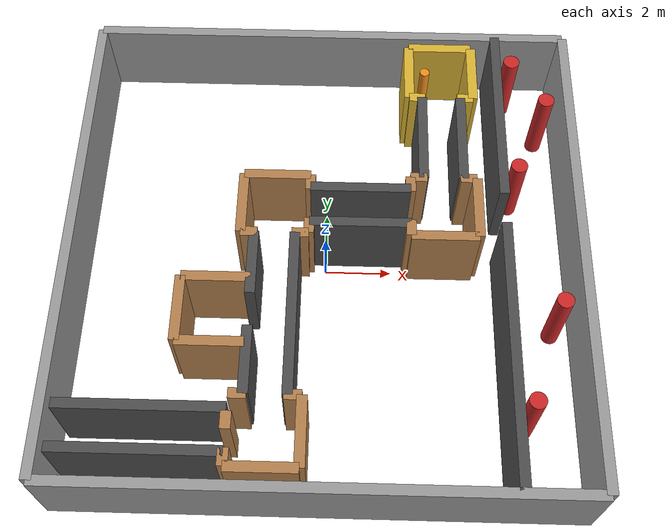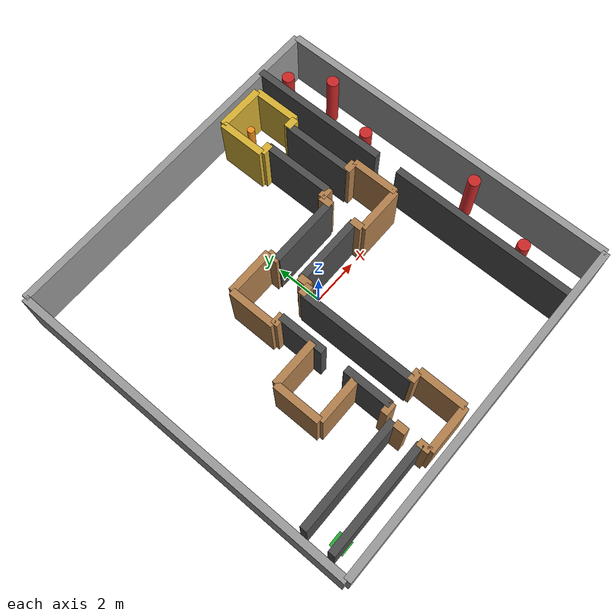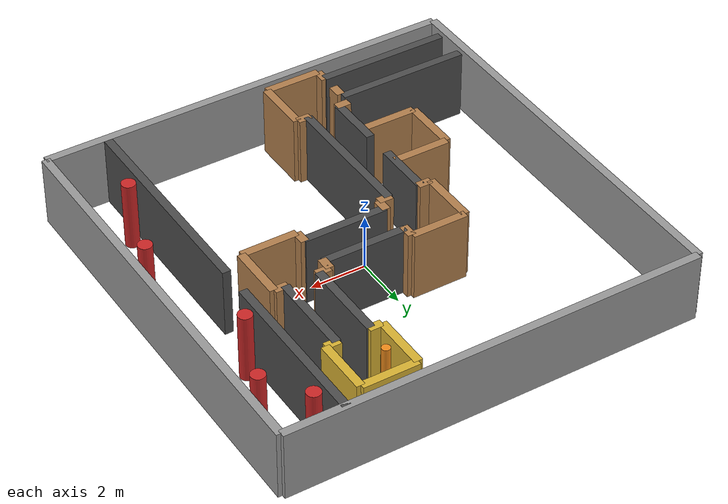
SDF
<?xml version="1.0" ?>
<sdf version="1.6">
  <world name="nidar_airmouse_arena">

    <physics type="ode">
      <max_step_size>0.004</max_step_size>
      <real_time_update_rate>250</real_time_update_rate>
    </physics>

    <model name="nidar_maze">
      <static>true</static>

      <!-- ============ OUTER BOUNDARY WALLS (15m x 15m) ============ -->
      <link name="wall_north">
        <pose>0 7.5 1.25 0 0 0</pose>
        <collision name="col_north"><geometry><box><size>15 0.3 2.5</size></box></geometry></collision>
        <visual name="vis_north"><geometry><box><size>15 0.3 2.5</size></box></geometry>
          <material><script><uri>file://media/materials/scripts/gazebo.material</uri><name>Gazebo/Grey</name></script></material>
        </visual>
      </link>

      <link name="wall_south">
        <pose>0 -7.5 1.25 0 0 0</pose>
        <collision name="col_south"><geometry><box><size>15 0.3 2.5</size></box></geometry></collision>
        <visual name="vis_south"><geometry><box><size>15 0.3 2.5</size></box></geometry>
          <material><script><uri>file://media/materials/scripts/gazebo.material</uri><name>Gazebo/Grey</name></script></material>
        </visual>
      </link>

      <link name="wall_east">
        <pose>7.5 0 1.25 0 0 0</pose>
        <collision name="col_east"><geometry><box><size>0.3 15 2.5</size></box></geometry></collision>
        <visual name="vis_east"><geometry><box><size>0.3 15 2.5</size></box></geometry>
          <material><script><uri>file://media/materials/scripts/gazebo.material</uri><name>Gazebo/Grey</name></script></material>
        </visual>
      </link>

      <link name="wall_west">
        <pose>-7.5 0 1.25 0 0 0</pose>
        <collision name="col_west"><geometry><box><size>0.3 15 2.5</size></box></geometry></collision>
        <visual name="vis_west"><geometry><box><size>0.3 15 2.5</size></box></geometry>
          <material><script><uri>file://media/materials/scripts/gazebo.material</uri><name>Gazebo/Grey</name></script></material>
        </visual>
      </link>

      <!-- ============ LAUNCH PAD (2ft x 2ft = 0.61m x 0.61m) ============ -->
      <link name="launch_pad">
        <pose>-6.5 -6.5 0.01 0 0 0</pose>
        <collision name="col_pad"><geometry><box><size>0.61 0.61 0.02</size></box></geometry></collision>
        <visual name="vis_pad"><geometry><box><size>0.61 0.61 0.02</size></box></geometry>
          <material><script><uri>file://media/materials/scripts/gazebo.material</uri><name>Gazebo/Green</name></script></material>
        </visual>
      </link>

      <!-- ============ CORRIDOR 1: Launch pad -> Room 1 (horizontal, y=-6) ============ -->
      <link name="corr1_wall_south">
        <pose>-4.85 -6.6 1.25 0 0 0</pose>
        <collision name="c1s_col"><geometry><box><size>4.7 0.3 2.5</size></box></geometry></collision>
        <visual name="c1s_vis"><geometry><box><size>4.7 0.3 2.5</size></box></geometry>
          <material><script><uri>file://media/materials/scripts/gazebo.material</uri><name>Gazebo/DarkGrey</name></script></material>
        </visual>
      </link>
      <link name="corr1_wall_north">
        <pose>-4.85 -5.4 1.25 0 0 0</pose>
        <collision name="c1n_col"><geometry><box><size>4.7 0.3 2.5</size></box></geometry></collision>
        <visual name="c1n_vis"><geometry><box><size>4.7 0.3 2.5</size></box></geometry>
          <material><script><uri>file://media/materials/scripts/gazebo.material</uri><name>Gazebo/DarkGrey</name></script></material>
        </visual>
      </link>

      <!-- ============ ROOM 1: center (-1.5,-6), 2x2 ============ -->
      <!-- West wall with door (to corridor 1), gap y[-6.5,-5.5] -->
      <link name="r1_west_a">
        <pose>-2.5 -6.75 1.25 0 0 0</pose>
        <collision name="r1wa_col"><geometry><box><size>0.3 0.5 2.5</size></box></geometry></collision>
        <visual name="r1wa_vis"><geometry><box><size>0.3 0.5 2.5</size></box></geometry>
          <material><script><uri>file://media/materials/scripts/gazebo.material</uri><name>Gazebo/Wood</name></script></material>
        </visual>
      </link>
      <link name="r1_west_b">
        <pose>-2.5 -5.75 1.25 0 0 0</pose>
        <collision name="r1wb_col"><geometry><box><size>0.3 0.5 2.5</size></box></geometry></collision>
        <visual name="r1wb_vis"><geometry><box><size>0.3 0.5 2.5</size></box></geometry>
          <material><script><uri>file://media/materials/scripts/gazebo.material</uri><name>Gazebo/Wood</name></script></material>
        </visual>
      </link>
      <link name="r1_east">
        <pose>-0.5 -6 1.25 0 0 0</pose>
        <collision name="r1e_col"><geometry><box><size>0.3 2 2.5</size></box></geometry></collision>
        <visual name="r1e_vis"><geometry><box><size>0.3 2 2.5</size></box></geometry>
          <material><script><uri>file://media/materials/scripts/gazebo.material</uri><name>Gazebo/Wood</name></script></material>
        </visual>
      </link>
      <link name="r1_south">
        <pose>-1.5 -7 1.25 0 0 0</pose>
        <collision name="r1s_col"><geometry><box><size>2 0.3 2.5</size></box></geometry></collision>
        <visual name="r1s_vis"><geometry><box><size>2 0.3 2.5</size></box></geometry>
          <material><script><uri>file://media/materials/scripts/gazebo.material</uri><name>Gazebo/Wood</name></script></material>
        </visual>
      </link>
      <!-- North wall with door (to corridor 2), gap x[-2,-1] -->
      <link name="r1_north_a">
        <pose>-2.25 -5 1.25 0 0 0</pose>
        <collision name="r1na_col"><geometry><box><size>0.5 0.3 2.5</size></box></geometry></collision>
        <visual name="r1na_vis"><geometry><box><size>0.5 0.3 2.5</size></box></geometry>
          <material><script><uri>file://media/materials/scripts/gazebo.material</uri><name>Gazebo/Wood</name></script></material>
        </visual>
      </link>
      <link name="r1_north_b">
        <pose>-0.75 -5 1.25 0 0 0</pose>
        <collision name="r1nb_col"><geometry><box><size>0.5 0.3 2.5</size></box></geometry></collision>
        <visual name="r1nb_vis"><geometry><box><size>0.5 0.3 2.5</size></box></geometry>
          <material><script><uri>file://media/materials/scripts/gazebo.material</uri><name>Gazebo/Wood</name></script></material>
        </visual>
      </link>

      <!-- ============ CORRIDOR 2: Room 1 -> Room 2 (vertical, x=-1.5) ============ -->
      <!-- West wall split for Room 5 branch door, gap y[-3,-2] -->
      <link name="corr2_wall_west_a">
        <pose>-2.1 -4 1.25 0 0 0</pose>
        <collision name="c2wa_col"><geometry><box><size>0.3 2 2.5</size></box></geometry></collision>
        <visual name="c2wa_vis"><geometry><box><size>0.3 2 2.5</size></box></geometry>
          <material><script><uri>file://media/materials/scripts/gazebo.material</uri><name>Gazebo/DarkGrey</name></script></material>
        </visual>
      </link>
      <link name="corr2_wall_west_b">
        <pose>-2.1 -1 1.25 0 0 0</pose>
        <collision name="c2wb_col"><geometry><box><size>0.3 2 2.5</size></box></geometry></collision>
        <visual name="c2wb_vis"><geometry><box><size>0.3 2 2.5</size></box></geometry>
          <material><script><uri>file://media/materials/scripts/gazebo.material</uri><name>Gazebo/DarkGrey</name></script></material>
        </visual>
      </link>
      <link name="corr2_wall_east">
        <pose>-0.9 -2.5 1.25 0 0 0</pose>
        <collision name="c2e_col"><geometry><box><size>0.3 5 2.5</size></box></geometry></collision>
        <visual name="c2e_vis"><geometry><box><size>0.3 5 2.5</size></box></geometry>
          <material><script><uri>file://media/materials/scripts/gazebo.material</uri><name>Gazebo/DarkGrey</name></script></material>
        </visual>
      </link>

      <!-- ============ ROOM 5: dead-end trap room, branch off corridor 2 ============ -->
      <!-- East side of room 5 reuses corridor2_wall_west_a/b as its wall; only the 1m gap is the door -->
      <link name="r5_west">
        <pose>-4.1 -2.5 1.25 0 0 0</pose>
        <collision name="r5w_col"><geometry><box><size>0.3 2 2.5</size></box></geometry></collision>
        <visual name="r5w_vis"><geometry><box><size>0.3 2 2.5</size></box></geometry>
          <material><script><uri>file://media/materials/scripts/gazebo.material</uri><name>Gazebo/Wood</name></script></material>
        </visual>
      </link>
      <link name="r5_north">
        <pose>-3.1 -1.5 1.25 0 0 0</pose>
        <collision name="r5n_col"><geometry><box><size>2 0.3 2.5</size></box></geometry></collision>
        <visual name="r5n_vis"><geometry><box><size>2 0.3 2.5</size></box></geometry>
          <material><script><uri>file://media/materials/scripts/gazebo.material</uri><name>Gazebo/Wood</name></script></material>
        </visual>
      </link>
      <link name="r5_south">
        <pose>-3.1 -3.5 1.25 0 0 0</pose>
        <collision name="r5s_col"><geometry><box><size>2 0.3 2.5</size></box></geometry></collision>
        <visual name="r5s_vis"><geometry><box><size>2 0.3 2.5</size></box></geometry>
          <material><script><uri>file://media/materials/scripts/gazebo.material</uri><name>Gazebo/Wood</name></script></material>
        </visual>
      </link>

      <!-- ============ ROOM 2: center (-1.5,1), 2x2 ============ -->
      <!-- South wall with door (to corridor 2), gap x[-2,-1] -->
      <link name="r2_south_a">
        <pose>-2.25 0 1.25 0 0 0</pose>
        <collision name="r2sa_col"><geometry><box><size>0.5 0.3 2.5</size></box></geometry></collision>
        <visual name="r2sa_vis"><geometry><box><size>0.5 0.3 2.5</size></box></geometry>
          <material><script><uri>file://media/materials/scripts/gazebo.material</uri><name>Gazebo/Wood</name></script></material>
        </visual>
      </link>
      <link name="r2_south_b">
        <pose>-0.75 0 1.25 0 0 0</pose>
        <collision name="r2sb_col"><geometry><box><size>0.5 0.3 2.5</size></box></geometry></collision>
        <visual name="r2sb_vis"><geometry><box><size>0.5 0.3 2.5</size></box></geometry>
          <material><script><uri>file://media/materials/scripts/gazebo.material</uri><name>Gazebo/Wood</name></script></material>
        </visual>
      </link>
      <link name="r2_north">
        <pose>-1.5 2 1.25 0 0 0</pose>
        <collision name="r2n_col"><geometry><box><size>2 0.3 2.5</size></box></geometry></collision>
        <visual name="r2n_vis"><geometry><box><size>2 0.3 2.5</size></box></geometry>
          <material><script><uri>file://media/materials/scripts/gazebo.material</uri><name>Gazebo/Wood</name></script></material>
        </visual>
      </link>
      <link name="r2_west">
        <pose>-2.5 1 1.25 0 0 0</pose>
        <collision name="r2w_col"><geometry><box><size>0.3 2 2.5</size></box></geometry></collision>
        <visual name="r2w_vis"><geometry><box><size>0.3 2 2.5</size></box></geometry>
          <material><script><uri>file://media/materials/scripts/gazebo.material</uri><name>Gazebo/Wood</name></script></material>
        </visual>
      </link>
      <!-- East wall with door (to corridor 3), gap y[0.5,1.5] -->
      <link name="r2_east_a">
        <pose>-0.5 0.25 1.25 0 0 0</pose>
        <collision name="r2ea_col"><geometry><box><size>0.3 0.5 2.5</size></box></geometry></collision>
        <visual name="r2ea_vis"><geometry><box><size>0.3 0.5 2.5</size></box></geometry>
          <material><script><uri>file://media/materials/scripts/gazebo.material</uri><name>Gazebo/Wood</name></script></material>
        </visual>
      </link>
      <link name="r2_east_b">
        <pose>-0.5 1.75 1.25 0 0 0</pose>
        <collision name="r2eb_col"><geometry><box><size>0.3 0.5 2.5</size></box></geometry></collision>
        <visual name="r2eb_vis"><geometry><box><size>0.3 0.5 2.5</size></box></geometry>
          <material><script><uri>file://media/materials/scripts/gazebo.material</uri><name>Gazebo/Wood</name></script></material>
        </visual>
      </link>

      <!-- ============ CORRIDOR 3: Room 2 -> Room 3 (horizontal, y=1) ============ -->
      <link name="corr3_wall_south">
        <pose>1 0.4 1.25 0 0 0</pose>
        <collision name="c3s_col"><geometry><box><size>3 0.3 2.5</size></box></geometry></collision>
        <visual name="c3s_vis"><geometry><box><size>3 0.3 2.5</size></box></geometry>
          <material><script><uri>file://media/materials/scripts/gazebo.material</uri><name>Gazebo/DarkGrey</name></script></material>
        </visual>
      </link>
      <link name="corr3_wall_north">
        <pose>1 1.6 1.25 0 0 0</pose>
        <collision name="c3n_col"><geometry><box><size>3 0.3 2.5</size></box></geometry></collision>
        <visual name="c3n_vis"><geometry><box><size>3 0.3 2.5</size></box></geometry>
          <material><script><uri>file://media/materials/scripts/gazebo.material</uri><name>Gazebo/DarkGrey</name></script></material>
        </visual>
      </link>

      <!-- ============ ROOM 3: center (3.5,1), 2x2 ============ -->
      <!-- West wall with door (to corridor 3), gap y[0.5,1.5] -->
      <link name="r3_west_a">
        <pose>2.5 0.25 1.25 0 0 0</pose>
        <collision name="r3wa_col"><geometry><box><size>0.3 0.5 2.5</size></box></geometry></collision>
        <visual name="r3wa_vis"><geometry><box><size>0.3 0.5 2.5</size></box></geometry>
          <material><script><uri>file://media/materials/scripts/gazebo.material</uri><name>Gazebo/Wood</name></script></material>
        </visual>
      </link>
      <link name="r3_west_b">
        <pose>2.5 1.75 1.25 0 0 0</pose>
        <collision name="r3wb_col"><geometry><box><size>0.3 0.5 2.5</size></box></geometry></collision>
        <visual name="r3wb_vis"><geometry><box><size>0.3 0.5 2.5</size></box></geometry>
          <material><script><uri>file://media/materials/scripts/gazebo.material</uri><name>Gazebo/Wood</name></script></material>
        </visual>
      </link>
      <link name="r3_east">
        <pose>4.5 1 1.25 0 0 0</pose>
        <collision name="r3e_col"><geometry><box><size>0.3 2 2.5</size></box></geometry></collision>
        <visual name="r3e_vis"><geometry><box><size>0.3 2 2.5</size></box></geometry>
          <material><script><uri>file://media/materials/scripts/gazebo.material</uri><name>Gazebo/Wood</name></script></material>
        </visual>
      </link>
      <link name="r3_south">
        <pose>3.5 0 1.25 0 0 0</pose>
        <collision name="r3s_col"><geometry><box><size>2 0.3 2.5</size></box></geometry></collision>
        <visual name="r3s_vis"><geometry><box><size>2 0.3 2.5</size></box></geometry>
          <material><script><uri>file://media/materials/scripts/gazebo.material</uri><name>Gazebo/Wood</name></script></material>
        </visual>
      </link>
      <!-- North wall with door (to corridor 4), gap x[3,4] -->
      <link name="r3_north_a">
        <pose>2.75 2 1.25 0 0 0</pose>
        <collision name="r3na_col"><geometry><box><size>0.5 0.3 2.5</size></box></geometry></collision>
        <visual name="r3na_vis"><geometry><box><size>0.5 0.3 2.5</size></box></geometry>
          <material><script><uri>file://media/materials/scripts/gazebo.material</uri><name>Gazebo/Wood</name></script></material>
        </visual>
      </link>
      <link name="r3_north_b">
        <pose>4.25 2 1.25 0 0 0</pose>
        <collision name="r3nb_col"><geometry><box><size>0.5 0.3 2.5</size></box></geometry></collision>
        <visual name="r3nb_vis"><geometry><box><size>0.5 0.3 2.5</size></box></geometry>
          <material><script><uri>file://media/materials/scripts/gazebo.material</uri><name>Gazebo/Wood</name></script></material>
        </visual>
      </link>

      <!-- ============ CORRIDOR 4: Room 3 -> Room 4 (vertical, x=3.5) ============ -->
      <link name="corr4_wall_west">
        <pose>2.9 3.5 1.25 0 0 0</pose>
        <collision name="c4w_col"><geometry><box><size>0.3 3 2.5</size></box></geometry></collision>
        <visual name="c4w_vis"><geometry><box><size>0.3 3 2.5</size></box></geometry>
          <material><script><uri>file://media/materials/scripts/gazebo.material</uri><name>Gazebo/DarkGrey</name></script></material>
        </visual>
      </link>
      <link name="corr4_wall_east">
        <pose>4.1 3.5 1.25 0 0 0</pose>
        <collision name="c4e_col"><geometry><box><size>0.3 3 2.5</size></box></geometry></collision>
        <visual name="c4e_vis"><geometry><box><size>0.3 3 2.5</size></box></geometry>
          <material><script><uri>file://media/materials/scripts/gazebo.material</uri><name>Gazebo/DarkGrey</name></script></material>
        </visual>
      </link>

      <!-- ============ ROOM 4: GOAL ROOM, center (3.5,6), 2x2 ============ -->
      <!-- South wall with door (to corridor 4), gap x[3,4] -->
      <link name="r4_south_a">
        <pose>2.75 5 1.25 0 0 0</pose>
        <collision name="r4sa_col"><geometry><box><size>0.5 0.3 2.5</size></box></geometry></collision>
        <visual name="r4sa_vis"><geometry><box><size>0.5 0.3 2.5</size></box></geometry>
          <material><script><uri>file://media/materials/scripts/gazebo.material</uri><name>Gazebo/Gold</name></script></material>
        </visual>
      </link>
      <link name="r4_south_b">
        <pose>4.25 5 1.25 0 0 0</pose>
        <collision name="r4sb_col"><geometry><box><size>0.5 0.3 2.5</size></box></geometry></collision>
        <visual name="r4sb_vis"><geometry><box><size>0.5 0.3 2.5</size></box></geometry>
          <material><script><uri>file://media/materials/scripts/gazebo.material</uri><name>Gazebo/Gold</name></script></material>
        </visual>
      </link>
      <link name="r4_north">
        <pose>3.5 7 1.25 0 0 0</pose>
        <collision name="r4n_col"><geometry><box><size>2 0.3 2.5</size></box></geometry></collision>
        <visual name="r4n_vis"><geometry><box><size>2 0.3 2.5</size></box></geometry>
          <material><script><uri>file://media/materials/scripts/gazebo.material</uri><name>Gazebo/Gold</name></script></material>
        </visual>
      </link>
      <link name="r4_west">
        <pose>2.5 6 1.25 0 0 0</pose>
        <collision name="r4w_col"><geometry><box><size>0.3 2 2.5</size></box></geometry></collision>
        <visual name="r4w_vis"><geometry><box><size>0.3 2 2.5</size></box></geometry>
          <material><script><uri>file://media/materials/scripts/gazebo.material</uri><name>Gazebo/Gold</name></script></material>
        </visual>
      </link>
      <link name="r4_east">
        <pose>4.5 6 1.25 0 0 0</pose>
        <collision name="r4e_col"><geometry><box><size>0.3 2 2.5</size></box></geometry></collision>
        <visual name="r4e_vis"><geometry><box><size>0.3 2 2.5</size></box></geometry>
          <material><script><uri>file://media/materials/scripts/gazebo.material</uri><name>Gazebo/Gold</name></script></material>
        </visual>
      </link>
      <!-- small pillar obstacle inside the goal room -->
      <link name="r4_pillar">
        <pose>3.0 6 1.25 0 0 0</pose>
        <collision name="r4p_col"><geometry><cylinder><radius>0.15</radius><length>2.5</length></cylinder></geometry></collision>
        <visual name="r4p_vis"><geometry><cylinder><radius>0.15</radius><length>2.5</length></cylinder></geometry>
          <material><script><uri>file://media/materials/scripts/gazebo.material</uri><name>Gazebo/Orange</name></script></material>
        </visual>
      </link>

      <!-- ============ PILLAR GAUNTLET DIVIDER (x=5.3), door gap y[0.5,1.5] ============ -->
      <link name="pg_divider_a">
        <pose>5.3 -3.5 1.25 0 0 0</pose>
        <collision name="pga_col"><geometry><box><size>0.3 8 2.5</size></box></geometry></collision>
        <visual name="pga_vis"><geometry><box><size>0.3 8 2.5</size></box></geometry>
          <material><script><uri>file://media/materials/scripts/gazebo.material</uri><name>Gazebo/DarkGrey</name></script></material>
        </visual>
      </link>
      <link name="pg_divider_b">
        <pose>5.3 4.5 1.25 0 0 0</pose>
        <collision name="pgb_col"><geometry><box><size>0.3 6 2.5</size></box></geometry></collision>
        <visual name="pgb_vis"><geometry><box><size>0.3 6 2.5</size></box></geometry>
          <material><script><uri>file://media/materials/scripts/gazebo.material</uri><name>Gazebo/DarkGrey</name></script></material>
        </visual>
      </link>

      <!-- ============ PILLAR GAUNTLET: staggered slalom obstacles ============ -->
      <link name="pillar_1">
        <pose>5.8 -5 1.25 0 0 0</pose>
        <collision name="p1_col"><geometry><cylinder><radius>0.25</radius><length>2.5</length></cylinder></geometry></collision>
        <visual name="p1_vis"><geometry><cylinder><radius>0.25</radius><length>2.5</length></cylinder></geometry>
          <material><script><uri>file://media/materials/scripts/gazebo.material</uri><name>Gazebo/Red</name></script></material>
        </visual>
      </link>
      <link name="pillar_2">
        <pose>6.8 -2 1.25 0 0 0</pose>
        <collision name="p2_col"><geometry><cylinder><radius>0.25</radius><length>2.5</length></cylinder></geometry></collision>
        <visual name="p2_vis"><geometry><cylinder><radius>0.25</radius><length>2.5</length></cylinder></geometry>
          <material><script><uri>file://media/materials/scripts/gazebo.material</uri><name>Gazebo/Red</name></script></material>
        </visual>
      </link>
      <link name="pillar_3">
        <pose>5.8 2.5 1.25 0 0 0</pose>
        <collision name="p3_col"><geometry><cylinder><radius>0.25</radius><length>2.5</length></cylinder></geometry></collision>
        <visual name="p3_vis"><geometry><cylinder><radius>0.25</radius><length>2.5</length></cylinder></geometry>
          <material><script><uri>file://media/materials/scripts/gazebo.material</uri><name>Gazebo/Red</name></script></material>
        </visual>
      </link>
      <link name="pillar_4">
        <pose>6.8 5 1.25 0 0 0</pose>
        <collision name="p4_col"><geometry><cylinder><radius>0.25</radius><length>2.5</length></cylinder></geometry></collision>
        <visual name="p4_vis"><geometry><cylinder><radius>0.25</radius><length>2.5</length></cylinder></geometry>
          <material><script><uri>file://media/materials/scripts/gazebo.material</uri><name>Gazebo/Red</name></script></material>
        </visual>
      </link>
      <link name="pillar_5">
        <pose>5.8 6.5 1.25 0 0 0</pose>
        <collision name="p5_col"><geometry><cylinder><radius>0.25</radius><length>2.5</length></cylinder></geometry></collision>
        <visual name="p5_vis"><geometry><cylinder><radius>0.25</radius><length>2.5</length></cylinder></geometry>
          <material><script><uri>file://media/materials/scripts/gazebo.material</uri><name>Gazebo/Red</name></script></material>
        </visual>
      </link>

    </model>
  </world>
</sdf>
